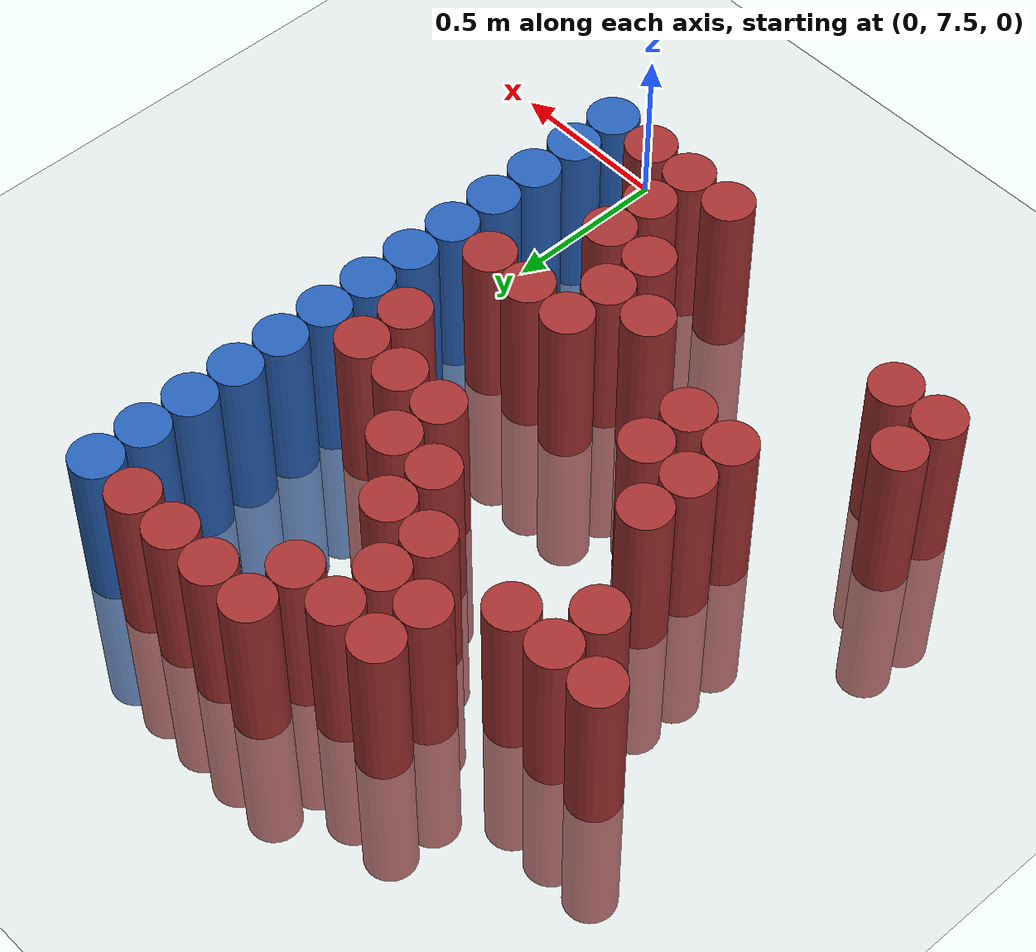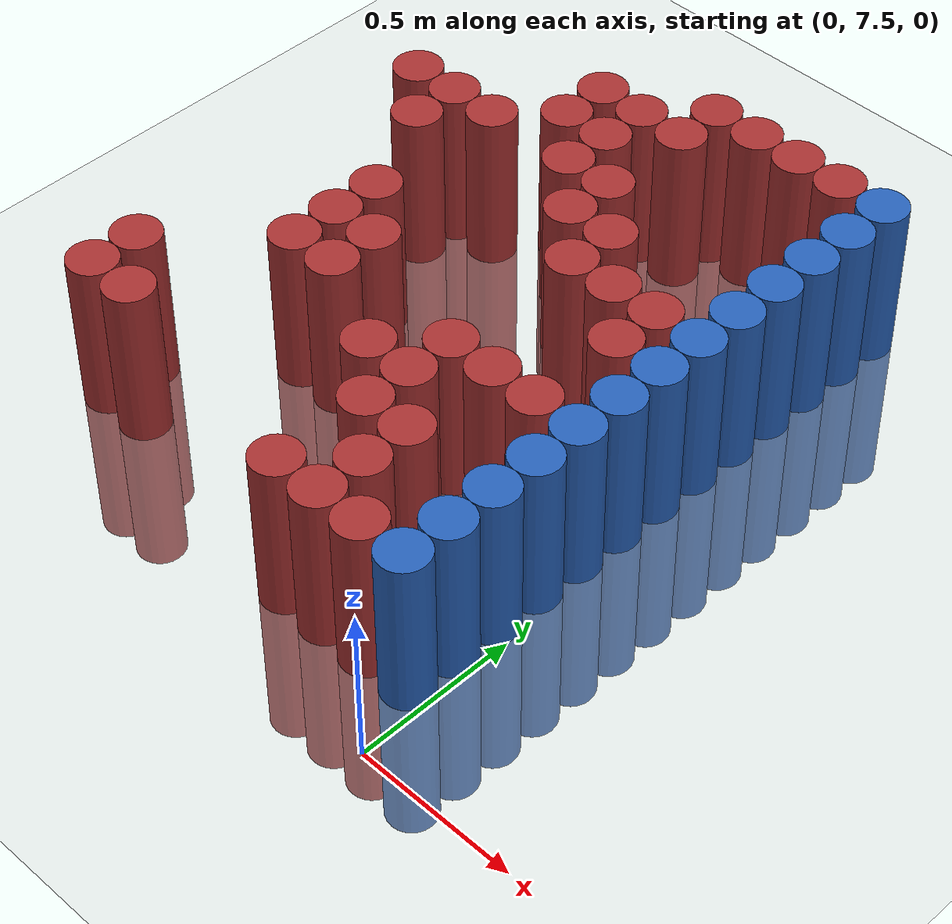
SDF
<sdf version="1.6">
 <world name="default">
  <model name="ground_plane">
   <static>1</static>
   <link name="link">
    <collision name="collision">
     <geometry><plane><normal>0 0 1</normal><size>100 100</size></plane></geometry>
     <surface><friction><ode><mu>100</mu><mu2>50</mu2></ode></friction></surface>
    </collision>
    <visual name="visual">
     <cast_shadows>0</cast_shadows>
     <geometry><plane><normal>0 0 1</normal><size>100 100</size></plane></geometry>
     <material>
      <script><uri>file://media/materials/scripts/gazebo.material</uri><name>Gazebo/Grey</name></script>
     </material>
    </visual>
   </link>
  </model>
  <model name="unit_cylinder_172">
   <static>1</static>
   <pose>-1.425000 7.875000 0.000000 0.000000 0.000000 0.000000</pose>
   <link name="link">
    <inertial>
     <mass>1</mass>
     <inertia><ixx>0.145833</ixx><ixy>0</ixy><ixz>0</ixz><iyy>0.145833</iyy><iyz>0</iyz><izz>0.125</izz></inertia>
    </inertial>
    <collision name="collision">
     <geometry><cylinder><radius>0.075000</radius><length>1</length></cylinder></geometry>
    </collision>
    <visual name="visual">
     <geometry><cylinder><radius>0.075000</radius><length>1</length></cylinder></geometry>
     <material>
      <ambient>0.648000 0.192000 0.192000 1</ambient>
      <diffuse>0.648000 0.192000 0.192000 1</diffuse>
     </material>
     <material>
      <script><name>Gazebo/Grey</name><uri>file://media/materials/scripts/gazebo.material</uri></script>
     </material>
    </visual>
   </link>
  </model>
  <model name="unit_cylinder_173">
   <static>1</static>
   <pose>-1.425000 8.025000 0.000000 0.000000 0.000000 0.000000</pose>
   <link name="link">
    <inertial>
     <mass>1</mass>
     <inertia><ixx>0.145833</ixx><ixy>0</ixy><ixz>0</ixz><iyy>0.145833</iyy><iyz>0</iyz><izz>0.125</izz></inertia>
    </inertial>
    <collision name="collision">
     <geometry><cylinder><radius>0.075000</radius><length>1</length></cylinder></geometry>
    </collision>
    <visual name="visual">
     <geometry><cylinder><radius>0.075000</radius><length>1</length></cylinder></geometry>
     <material>
      <ambient>0.648000 0.192000 0.192000 1</ambient>
      <diffuse>0.648000 0.192000 0.192000 1</diffuse>
     </material>
     <material>
      <script><name>Gazebo/Grey</name><uri>file://media/materials/scripts/gazebo.material</uri></script>
     </material>
    </visual>
   </link>
  </model>
  <model name="unit_cylinder_174">
   <static>1</static>
   <pose>-1.425000 9.075000 0.000000 0.000000 0.000000 0.000000</pose>
   <link name="link">
    <inertial>
     <mass>1</mass>
     <inertia><ixx>0.145833</ixx><ixy>0</ixy><ixz>0</ixz><iyy>0.145833</iyy><iyz>0</iyz><izz>0.125</izz></inertia>
    </inertial>
    <collision name="collision">
     <geometry><cylinder><radius>0.075000</radius><length>1</length></cylinder></geometry>
    </collision>
    <visual name="visual">
     <geometry><cylinder><radius>0.075000</radius><length>1</length></cylinder></geometry>
     <material>
      <ambient>0.648000 0.192000 0.192000 1</ambient>
      <diffuse>0.648000 0.192000 0.192000 1</diffuse>
     </material>
     <material>
      <script><name>Gazebo/Grey</name><uri>file://media/materials/scripts/gazebo.material</uri></script>
     </material>
    </visual>
   </link>
  </model>
  <model name="unit_cylinder_179">
   <static>1</static>
   <pose>-1.275000 7.875000 0.000000 0.000000 0.000000 0.000000</pose>
   <link name="link">
    <inertial>
     <mass>1</mass>
     <inertia><ixx>0.145833</ixx><ixy>0</ixy><ixz>0</ixz><iyy>0.145833</iyy><iyz>0</iyz><izz>0.125</izz></inertia>
    </inertial>
    <collision name="collision">
     <geometry><cylinder><radius>0.075000</radius><length>1</length></cylinder></geometry>
    </collision>
    <visual name="visual">
     <geometry><cylinder><radius>0.075000</radius><length>1</length></cylinder></geometry>
     <material>
      <ambient>0.648000 0.192000 0.192000 1</ambient>
      <diffuse>0.648000 0.192000 0.192000 1</diffuse>
     </material>
     <material>
      <script><name>Gazebo/Grey</name><uri>file://media/materials/scripts/gazebo.material</uri></script>
     </material>
    </visual>
   </link>
  </model>
  <model name="unit_cylinder_180">
   <static>1</static>
   <pose>-1.275000 8.925000 0.000000 0.000000 0.000000 0.000000</pose>
   <link name="link">
    <inertial>
     <mass>1</mass>
     <inertia><ixx>0.145833</ixx><ixy>0</ixy><ixz>0</ixz><iyy>0.145833</iyy><iyz>0</iyz><izz>0.125</izz></inertia>
    </inertial>
    <collision name="collision">
     <geometry><cylinder><radius>0.075000</radius><length>1</length></cylinder></geometry>
    </collision>
    <visual name="visual">
     <geometry><cylinder><radius>0.075000</radius><length>1</length></cylinder></geometry>
     <material>
      <ambient>0.648000 0.192000 0.192000 1</ambient>
      <diffuse>0.648000 0.192000 0.192000 1</diffuse>
     </material>
     <material>
      <script><name>Gazebo/Grey</name><uri>file://media/materials/scripts/gazebo.material</uri></script>
     </material>
    </visual>
   </link>
  </model>
  <model name="unit_cylinder_181">
   <static>1</static>
   <pose>-1.275000 9.075000 0.000000 0.000000 0.000000 0.000000</pose>
   <link name="link">
    <inertial>
     <mass>1</mass>
     <inertia><ixx>0.145833</ixx><ixy>0</ixy><ixz>0</ixz><iyy>0.145833</iyy><iyz>0</iyz><izz>0.125</izz></inertia>
    </inertial>
    <collision name="collision">
     <geometry><cylinder><radius>0.075000</radius><length>1</length></cylinder></geometry>
    </collision>
    <visual name="visual">
     <geometry><cylinder><radius>0.075000</radius><length>1</length></cylinder></geometry>
     <material>
      <ambient>0.648000 0.192000 0.192000 1</ambient>
      <diffuse>0.648000 0.192000 0.192000 1</diffuse>
     </material>
     <material>
      <script><name>Gazebo/Grey</name><uri>file://media/materials/scripts/gazebo.material</uri></script>
     </material>
    </visual>
   </link>
  </model>
  <model name="unit_cylinder_187">
   <static>1</static>
   <pose>-1.125000 8.325000 0.000000 0.000000 0.000000 0.000000</pose>
   <link name="link">
    <inertial>
     <mass>1</mass>
     <inertia><ixx>0.145833</ixx><ixy>0</ixy><ixz>0</ixz><iyy>0.145833</iyy><iyz>0</iyz><izz>0.125</izz></inertia>
    </inertial>
    <collision name="collision">
     <geometry><cylinder><radius>0.075000</radius><length>1</length></cylinder></geometry>
    </collision>
    <visual name="visual">
     <geometry><cylinder><radius>0.075000</radius><length>1</length></cylinder></geometry>
     <material>
      <ambient>0.648000 0.192000 0.192000 1</ambient>
      <diffuse>0.648000 0.192000 0.192000 1</diffuse>
     </material>
     <material>
      <script><name>Gazebo/Grey</name><uri>file://media/materials/scripts/gazebo.material</uri></script>
     </material>
    </visual>
   </link>
  </model>
  <model name="unit_cylinder_188">
   <static>1</static>
   <pose>-1.125000 8.475000 0.000000 0.000000 0.000000 0.000000</pose>
   <link name="link">
    <inertial>
     <mass>1</mass>
     <inertia><ixx>0.145833</ixx><ixy>0</ixy><ixz>0</ixz><iyy>0.145833</iyy><iyz>0</iyz><izz>0.125</izz></inertia>
    </inertial>
    <collision name="collision">
     <geometry><cylinder><radius>0.075000</radius><length>1</length></cylinder></geometry>
    </collision>
    <visual name="visual">
     <geometry><cylinder><radius>0.075000</radius><length>1</length></cylinder></geometry>
     <material>
      <ambient>0.648000 0.192000 0.192000 1</ambient>
      <diffuse>0.648000 0.192000 0.192000 1</diffuse>
     </material>
     <material>
      <script><name>Gazebo/Grey</name><uri>file://media/materials/scripts/gazebo.material</uri></script>
     </material>
    </visual>
   </link>
  </model>
  <model name="unit_cylinder_189">
   <static>1</static>
   <pose>-1.125000 8.625000 0.000000 0.000000 0.000000 0.000000</pose>
   <link name="link">
    <inertial>
     <mass>1</mass>
     <inertia><ixx>0.145833</ixx><ixy>0</ixy><ixz>0</ixz><iyy>0.145833</iyy><iyz>0</iyz><izz>0.125</izz></inertia>
    </inertial>
    <collision name="collision">
     <geometry><cylinder><radius>0.075000</radius><length>1</length></cylinder></geometry>
    </collision>
    <visual name="visual">
     <geometry><cylinder><radius>0.075000</radius><length>1</length></cylinder></geometry>
     <material>
      <ambient>0.648000 0.192000 0.192000 1</ambient>
      <diffuse>0.648000 0.192000 0.192000 1</diffuse>
     </material>
     <material>
      <script><name>Gazebo/Grey</name><uri>file://media/materials/scripts/gazebo.material</uri></script>
     </material>
    </visual>
   </link>
  </model>
  <model name="unit_cylinder_190">
   <static>1</static>
   <pose>-1.125000 9.075000 0.000000 0.000000 0.000000 0.000000</pose>
   <link name="link">
    <inertial>
     <mass>1</mass>
     <inertia><ixx>0.145833</ixx><ixy>0</ixy><ixz>0</ixz><iyy>0.145833</iyy><iyz>0</iyz><izz>0.125</izz></inertia>
    </inertial>
    <collision name="collision">
     <geometry><cylinder><radius>0.075000</radius><length>1</length></cylinder></geometry>
    </collision>
    <visual name="visual">
     <geometry><cylinder><radius>0.075000</radius><length>1</length></cylinder></geometry>
     <material>
      <ambient>0.648000 0.192000 0.192000 1</ambient>
      <diffuse>0.648000 0.192000 0.192000 1</diffuse>
     </material>
     <material>
      <script><name>Gazebo/Grey</name><uri>file://media/materials/scripts/gazebo.material</uri></script>
     </material>
    </visual>
   </link>
  </model>
  <model name="unit_cylinder_193">
   <static>1</static>
   <pose>-0.975000 8.325000 0.000000 0.000000 0.000000 0.000000</pose>
   <link name="link">
    <inertial>
     <mass>1</mass>
     <inertia><ixx>0.145833</ixx><ixy>0</ixy><ixz>0</ixz><iyy>0.145833</iyy><iyz>0</iyz><izz>0.125</izz></inertia>
    </inertial>
    <collision name="collision">
     <geometry><cylinder><radius>0.075000</radius><length>1</length></cylinder></geometry>
    </collision>
    <visual name="visual">
     <geometry><cylinder><radius>0.075000</radius><length>1</length></cylinder></geometry>
     <material>
      <ambient>0.648000 0.192000 0.192000 1</ambient>
      <diffuse>0.648000 0.192000 0.192000 1</diffuse>
     </material>
     <material>
      <script><name>Gazebo/Grey</name><uri>file://media/materials/scripts/gazebo.material</uri></script>
     </material>
    </visual>
   </link>
  </model>
  <model name="unit_cylinder_194">
   <static>1</static>
   <pose>-0.975000 8.475000 0.000000 0.000000 0.000000 0.000000</pose>
   <link name="link">
    <inertial>
     <mass>1</mass>
     <inertia><ixx>0.145833</ixx><ixy>0</ixy><ixz>0</ixz><iyy>0.145833</iyy><iyz>0</iyz><izz>0.125</izz></inertia>
    </inertial>
    <collision name="collision">
     <geometry><cylinder><radius>0.075000</radius><length>1</length></cylinder></geometry>
    </collision>
    <visual name="visual">
     <geometry><cylinder><radius>0.075000</radius><length>1</length></cylinder></geometry>
     <material>
      <ambient>0.648000 0.192000 0.192000 1</ambient>
      <diffuse>0.648000 0.192000 0.192000 1</diffuse>
     </material>
     <material>
      <script><name>Gazebo/Grey</name><uri>file://media/materials/scripts/gazebo.material</uri></script>
     </material>
    </visual>
   </link>
  </model>
  <model name="unit_cylinder_195">
   <static>1</static>
   <pose>-0.975000 9.225000 0.000000 0.000000 0.000000 0.000000</pose>
   <link name="link">
    <inertial>
     <mass>1</mass>
     <inertia><ixx>0.145833</ixx><ixy>0</ixy><ixz>0</ixz><iyy>0.145833</iyy><iyz>0</iyz><izz>0.125</izz></inertia>
    </inertial>
    <collision name="collision">
     <geometry><cylinder><radius>0.075000</radius><length>1</length></cylinder></geometry>
    </collision>
    <visual name="visual">
     <geometry><cylinder><radius>0.075000</radius><length>1</length></cylinder></geometry>
     <material>
      <ambient>0.648000 0.192000 0.192000 1</ambient>
      <diffuse>0.648000 0.192000 0.192000 1</diffuse>
     </material>
     <material>
      <script><name>Gazebo/Grey</name><uri>file://media/materials/scripts/gazebo.material</uri></script>
     </material>
    </visual>
   </link>
  </model>
  <model name="unit_cylinder_196">
   <static>1</static>
   <pose>-0.975000 9.375000 0.000000 0.000000 0.000000 0.000000</pose>
   <link name="link">
    <inertial>
     <mass>1</mass>
     <inertia><ixx>0.145833</ixx><ixy>0</ixy><ixz>0</ixz><iyy>0.145833</iyy><iyz>0</iyz><izz>0.125</izz></inertia>
    </inertial>
    <collision name="collision">
     <geometry><cylinder><radius>0.075000</radius><length>1</length></cylinder></geometry>
    </collision>
    <visual name="visual">
     <geometry><cylinder><radius>0.075000</radius><length>1</length></cylinder></geometry>
     <material>
      <ambient>0.648000 0.192000 0.192000 1</ambient>
      <diffuse>0.648000 0.192000 0.192000 1</diffuse>
     </material>
     <material>
      <script><name>Gazebo/Grey</name><uri>file://media/materials/scripts/gazebo.material</uri></script>
     </material>
    </visual>
   </link>
  </model>
  <model name="unit_cylinder_200">
   <static>1</static>
   <pose>-0.825000 9.075000 0.000000 0.000000 0.000000 0.000000</pose>
   <link name="link">
    <inertial>
     <mass>1</mass>
     <inertia><ixx>0.145833</ixx><ixy>0</ixy><ixz>0</ixz><iyy>0.145833</iyy><iyz>0</iyz><izz>0.125</izz></inertia>
    </inertial>
    <collision name="collision">
     <geometry><cylinder><radius>0.075000</radius><length>1</length></cylinder></geometry>
    </collision>
    <visual name="visual">
     <geometry><cylinder><radius>0.075000</radius><length>1</length></cylinder></geometry>
     <material>
      <ambient>0.648000 0.192000 0.192000 1</ambient>
      <diffuse>0.648000 0.192000 0.192000 1</diffuse>
     </material>
     <material>
      <script><name>Gazebo/Grey</name><uri>file://media/materials/scripts/gazebo.material</uri></script>
     </material>
    </visual>
   </link>
  </model>
  <model name="unit_cylinder_201">
   <static>1</static>
   <pose>-0.825000 9.225000 0.000000 0.000000 0.000000 0.000000</pose>
   <link name="link">
    <inertial>
     <mass>1</mass>
     <inertia><ixx>0.145833</ixx><ixy>0</ixy><ixz>0</ixz><iyy>0.145833</iyy><iyz>0</iyz><izz>0.125</izz></inertia>
    </inertial>
    <collision name="collision">
     <geometry><cylinder><radius>0.075000</radius><length>1</length></cylinder></geometry>
    </collision>
    <visual name="visual">
     <geometry><cylinder><radius>0.075000</radius><length>1</length></cylinder></geometry>
     <material>
      <ambient>0.648000 0.192000 0.192000 1</ambient>
      <diffuse>0.648000 0.192000 0.192000 1</diffuse>
     </material>
     <material>
      <script><name>Gazebo/Grey</name><uri>file://media/materials/scripts/gazebo.material</uri></script>
     </material>
    </visual>
   </link>
  </model>
  <model name="unit_cylinder_202">
   <static>1</static>
   <pose>-0.825000 9.375000 0.000000 0.000000 0.000000 0.000000</pose>
   <link name="link">
    <inertial>
     <mass>1</mass>
     <inertia><ixx>0.145833</ixx><ixy>0</ixy><ixz>0</ixz><iyy>0.145833</iyy><iyz>0</iyz><izz>0.125</izz></inertia>
    </inertial>
    <collision name="collision">
     <geometry><cylinder><radius>0.075000</radius><length>1</length></cylinder></geometry>
    </collision>
    <visual name="visual">
     <geometry><cylinder><radius>0.075000</radius><length>1</length></cylinder></geometry>
     <material>
      <ambient>0.648000 0.192000 0.192000 1</ambient>
      <diffuse>0.648000 0.192000 0.192000 1</diffuse>
     </material>
     <material>
      <script><name>Gazebo/Grey</name><uri>file://media/materials/scripts/gazebo.material</uri></script>
     </material>
    </visual>
   </link>
  </model>
  <model name="unit_cylinder_203">
   <static>1</static>
   <pose>-0.675000 8.175000 0.000000 0.000000 0.000000 0.000000</pose>
   <link name="link">
    <inertial>
     <mass>1</mass>
     <inertia><ixx>0.145833</ixx><ixy>0</ixy><ixz>0</ixz><iyy>0.145833</iyy><iyz>0</iyz><izz>0.125</izz></inertia>
    </inertial>
    <collision name="collision">
     <geometry><cylinder><radius>0.075000</radius><length>1</length></cylinder></geometry>
    </collision>
    <visual name="visual">
     <geometry><cylinder><radius>0.075000</radius><length>1</length></cylinder></geometry>
     <material>
      <ambient>0.648000 0.192000 0.192000 1</ambient>
      <diffuse>0.648000 0.192000 0.192000 1</diffuse>
     </material>
     <material>
      <script><name>Gazebo/Grey</name><uri>file://media/materials/scripts/gazebo.material</uri></script>
     </material>
    </visual>
   </link>
  </model>
  <model name="unit_cylinder_204">
   <static>1</static>
   <pose>-0.675000 8.925000 0.000000 0.000000 0.000000 0.000000</pose>
   <link name="link">
    <inertial>
     <mass>1</mass>
     <inertia><ixx>0.145833</ixx><ixy>0</ixy><ixz>0</ixz><iyy>0.145833</iyy><iyz>0</iyz><izz>0.125</izz></inertia>
    </inertial>
    <collision name="collision">
     <geometry><cylinder><radius>0.075000</radius><length>1</length></cylinder></geometry>
    </collision>
    <visual name="visual">
     <geometry><cylinder><radius>0.075000</radius><length>1</length></cylinder></geometry>
     <material>
      <ambient>0.648000 0.192000 0.192000 1</ambient>
      <diffuse>0.648000 0.192000 0.192000 1</diffuse>
     </material>
     <material>
      <script><name>Gazebo/Grey</name><uri>file://media/materials/scripts/gazebo.material</uri></script>
     </material>
    </visual>
   </link>
  </model>
  <model name="unit_cylinder_205">
   <static>1</static>
   <pose>-0.675000 9.075000 0.000000 0.000000 0.000000 0.000000</pose>
   <link name="link">
    <inertial>
     <mass>1</mass>
     <inertia><ixx>0.145833</ixx><ixy>0</ixy><ixz>0</ixz><iyy>0.145833</iyy><iyz>0</iyz><izz>0.125</izz></inertia>
    </inertial>
    <collision name="collision">
     <geometry><cylinder><radius>0.075000</radius><length>1</length></cylinder></geometry>
    </collision>
    <visual name="visual">
     <geometry><cylinder><radius>0.075000</radius><length>1</length></cylinder></geometry>
     <material>
      <ambient>0.648000 0.192000 0.192000 1</ambient>
      <diffuse>0.648000 0.192000 0.192000 1</diffuse>
     </material>
     <material>
      <script><name>Gazebo/Grey</name><uri>file://media/materials/scripts/gazebo.material</uri></script>
     </material>
    </visual>
   </link>
  </model>
  <model name="unit_cylinder_206">
   <static>1</static>
   <pose>-0.675000 9.375000 0.000000 0.000000 0.000000 0.000000</pose>
   <link name="link">
    <inertial>
     <mass>1</mass>
     <inertia><ixx>0.145833</ixx><ixy>0</ixy><ixz>0</ixz><iyy>0.145833</iyy><iyz>0</iyz><izz>0.125</izz></inertia>
    </inertial>
    <collision name="collision">
     <geometry><cylinder><radius>0.075000</radius><length>1</length></cylinder></geometry>
    </collision>
    <visual name="visual">
     <geometry><cylinder><radius>0.075000</radius><length>1</length></cylinder></geometry>
     <material>
      <ambient>0.648000 0.192000 0.192000 1</ambient>
      <diffuse>0.648000 0.192000 0.192000 1</diffuse>
     </material>
     <material>
      <script><name>Gazebo/Grey</name><uri>file://media/materials/scripts/gazebo.material</uri></script>
     </material>
    </visual>
   </link>
  </model>
  <model name="unit_cylinder_207">
   <static>1</static>
   <pose>-0.675000 9.525000 0.000000 0.000000 0.000000 0.000000</pose>
   <link name="link">
    <inertial>
     <mass>1</mass>
     <inertia><ixx>0.145833</ixx><ixy>0</ixy><ixz>0</ixz><iyy>0.145833</iyy><iyz>0</iyz><izz>0.125</izz></inertia>
    </inertial>
    <collision name="collision">
     <geometry><cylinder><radius>0.075000</radius><length>1</length></cylinder></geometry>
    </collision>
    <visual name="visual">
     <geometry><cylinder><radius>0.075000</radius><length>1</length></cylinder></geometry>
     <material>
      <ambient>0.648000 0.192000 0.192000 1</ambient>
      <diffuse>0.648000 0.192000 0.192000 1</diffuse>
     </material>
     <material>
      <script><name>Gazebo/Grey</name><uri>file://media/materials/scripts/gazebo.material</uri></script>
     </material>
    </visual>
   </link>
  </model>
  <model name="unit_cylinder_208">
   <static>1</static>
   <pose>-0.525000 7.725000 0.000000 0.000000 0.000000 0.000000</pose>
   <link name="link">
    <inertial>
     <mass>1</mass>
     <inertia><ixx>0.145833</ixx><ixy>0</ixy><ixz>0</ixz><iyy>0.145833</iyy><iyz>0</iyz><izz>0.125</izz></inertia>
    </inertial>
    <collision name="collision">
     <geometry><cylinder><radius>0.075000</radius><length>1</length></cylinder></geometry>
    </collision>
    <visual name="visual">
     <geometry><cylinder><radius>0.075000</radius><length>1</length></cylinder></geometry>
     <material>
      <ambient>0.648000 0.192000 0.192000 1</ambient>
      <diffuse>0.648000 0.192000 0.192000 1</diffuse>
     </material>
     <material>
      <script><name>Gazebo/Grey</name><uri>file://media/materials/scripts/gazebo.material</uri></script>
     </material>
    </visual>
   </link>
  </model>
  <model name="unit_cylinder_209">
   <static>1</static>
   <pose>-0.525000 8.025000 0.000000 0.000000 0.000000 0.000000</pose>
   <link name="link">
    <inertial>
     <mass>1</mass>
     <inertia><ixx>0.145833</ixx><ixy>0</ixy><ixz>0</ixz><iyy>0.145833</iyy><iyz>0</iyz><izz>0.125</izz></inertia>
    </inertial>
    <collision name="collision">
     <geometry><cylinder><radius>0.075000</radius><length>1</length></cylinder></geometry>
    </collision>
    <visual name="visual">
     <geometry><cylinder><radius>0.075000</radius><length>1</length></cylinder></geometry>
     <material>
      <ambient>0.648000 0.192000 0.192000 1</ambient>
      <diffuse>0.648000 0.192000 0.192000 1</diffuse>
     </material>
     <material>
      <script><name>Gazebo/Grey</name><uri>file://media/materials/scripts/gazebo.material</uri></script>
     </material>
    </visual>
   </link>
  </model>
  <model name="unit_cylinder_210">
   <static>1</static>
   <pose>-0.525000 8.175000 0.000000 0.000000 0.000000 0.000000</pose>
   <link name="link">
    <inertial>
     <mass>1</mass>
     <inertia><ixx>0.145833</ixx><ixy>0</ixy><ixz>0</ixz><iyy>0.145833</iyy><iyz>0</iyz><izz>0.125</izz></inertia>
    </inertial>
    <collision name="collision">
     <geometry><cylinder><radius>0.075000</radius><length>1</length></cylinder></geometry>
    </collision>
    <visual name="visual">
     <geometry><cylinder><radius>0.075000</radius><length>1</length></cylinder></geometry>
     <material>
      <ambient>0.648000 0.192000 0.192000 1</ambient>
      <diffuse>0.648000 0.192000 0.192000 1</diffuse>
     </material>
     <material>
      <script><name>Gazebo/Grey</name><uri>file://media/materials/scripts/gazebo.material</uri></script>
     </material>
    </visual>
   </link>
  </model>
  <model name="unit_cylinder_211">
   <static>1</static>
   <pose>-0.525000 8.325000 0.000000 0.000000 0.000000 0.000000</pose>
   <link name="link">
    <inertial>
     <mass>1</mass>
     <inertia><ixx>0.145833</ixx><ixy>0</ixy><ixz>0</ixz><iyy>0.145833</iyy><iyz>0</iyz><izz>0.125</izz></inertia>
    </inertial>
    <collision name="collision">
     <geometry><cylinder><radius>0.075000</radius><length>1</length></cylinder></geometry>
    </collision>
    <visual name="visual">
     <geometry><cylinder><radius>0.075000</radius><length>1</length></cylinder></geometry>
     <material>
      <ambient>0.648000 0.192000 0.192000 1</ambient>
      <diffuse>0.648000 0.192000 0.192000 1</diffuse>
     </material>
     <material>
      <script><name>Gazebo/Grey</name><uri>file://media/materials/scripts/gazebo.material</uri></script>
     </material>
    </visual>
   </link>
  </model>
  <model name="unit_cylinder_212">
   <static>1</static>
   <pose>-0.525000 8.775000 0.000000 0.000000 0.000000 0.000000</pose>
   <link name="link">
    <inertial>
     <mass>1</mass>
     <inertia><ixx>0.145833</ixx><ixy>0</ixy><ixz>0</ixz><iyy>0.145833</iyy><iyz>0</iyz><izz>0.125</izz></inertia>
    </inertial>
    <collision name="collision">
     <geometry><cylinder><radius>0.075000</radius><length>1</length></cylinder></geometry>
    </collision>
    <visual name="visual">
     <geometry><cylinder><radius>0.075000</radius><length>1</length></cylinder></geometry>
     <material>
      <ambient>0.648000 0.192000 0.192000 1</ambient>
      <diffuse>0.648000 0.192000 0.192000 1</diffuse>
     </material>
     <material>
      <script><name>Gazebo/Grey</name><uri>file://media/materials/scripts/gazebo.material</uri></script>
     </material>
    </visual>
   </link>
  </model>
  <model name="unit_cylinder_213">
   <static>1</static>
   <pose>-0.525000 8.925000 0.000000 0.000000 0.000000 0.000000</pose>
   <link name="link">
    <inertial>
     <mass>1</mass>
     <inertia><ixx>0.145833</ixx><ixy>0</ixy><ixz>0</ixz><iyy>0.145833</iyy><iyz>0</iyz><izz>0.125</izz></inertia>
    </inertial>
    <collision name="collision">
     <geometry><cylinder><radius>0.075000</radius><length>1</length></cylinder></geometry>
    </collision>
    <visual name="visual">
     <geometry><cylinder><radius>0.075000</radius><length>1</length></cylinder></geometry>
     <material>
      <ambient>0.648000 0.192000 0.192000 1</ambient>
      <diffuse>0.648000 0.192000 0.192000 1</diffuse>
     </material>
     <material>
      <script><name>Gazebo/Grey</name><uri>file://media/materials/scripts/gazebo.material</uri></script>
     </material>
    </visual>
   </link>
  </model>
  <model name="unit_cylinder_214">
   <static>1</static>
   <pose>-0.525000 9.525000 0.000000 0.000000 0.000000 0.000000</pose>
   <link name="link">
    <inertial>
     <mass>1</mass>
     <inertia><ixx>0.145833</ixx><ixy>0</ixy><ixz>0</ixz><iyy>0.145833</iyy><iyz>0</iyz><izz>0.125</izz></inertia>
    </inertial>
    <collision name="collision">
     <geometry><cylinder><radius>0.075000</radius><length>1</length></cylinder></geometry>
    </collision>
    <visual name="visual">
     <geometry><cylinder><radius>0.075000</radius><length>1</length></cylinder></geometry>
     <material>
      <ambient>0.648000 0.192000 0.192000 1</ambient>
      <diffuse>0.648000 0.192000 0.192000 1</diffuse>
     </material>
     <material>
      <script><name>Gazebo/Grey</name><uri>file://media/materials/scripts/gazebo.material</uri></script>
     </material>
    </visual>
   </link>
  </model>
  <model name="unit_cylinder_215">
   <static>1</static>
   <pose>-0.375000 7.725000 0.000000 0.000000 0.000000 0.000000</pose>
   <link name="link">
    <inertial>
     <mass>1</mass>
     <inertia><ixx>0.145833</ixx><ixy>0</ixy><ixz>0</ixz><iyy>0.145833</iyy><iyz>0</iyz><izz>0.125</izz></inertia>
    </inertial>
    <collision name="collision">
     <geometry><cylinder><radius>0.075000</radius><length>1</length></cylinder></geometry>
    </collision>
    <visual name="visual">
     <geometry><cylinder><radius>0.075000</radius><length>1</length></cylinder></geometry>
     <material>
      <ambient>0.648000 0.192000 0.192000 1</ambient>
      <diffuse>0.648000 0.192000 0.192000 1</diffuse>
     </material>
     <material>
      <script><name>Gazebo/Grey</name><uri>file://media/materials/scripts/gazebo.material</uri></script>
     </material>
    </visual>
   </link>
  </model>
  <model name="unit_cylinder_216">
   <static>1</static>
   <pose>-0.375000 7.875000 0.000000 0.000000 0.000000 0.000000</pose>
   <link name="link">
    <inertial>
     <mass>1</mass>
     <inertia><ixx>0.145833</ixx><ixy>0</ixy><ixz>0</ixz><iyy>0.145833</iyy><iyz>0</iyz><izz>0.125</izz></inertia>
    </inertial>
    <collision name="collision">
     <geometry><cylinder><radius>0.075000</radius><length>1</length></cylinder></geometry>
    </collision>
    <visual name="visual">
     <geometry><cylinder><radius>0.075000</radius><length>1</length></cylinder></geometry>
     <material>
      <ambient>0.648000 0.192000 0.192000 1</ambient>
      <diffuse>0.648000 0.192000 0.192000 1</diffuse>
     </material>
     <material>
      <script><name>Gazebo/Grey</name><uri>file://media/materials/scripts/gazebo.material</uri></script>
     </material>
    </visual>
   </link>
  </model>
  <model name="unit_cylinder_217">
   <static>1</static>
   <pose>-0.375000 8.025000 0.000000 0.000000 0.000000 0.000000</pose>
   <link name="link">
    <inertial>
     <mass>1</mass>
     <inertia><ixx>0.145833</ixx><ixy>0</ixy><ixz>0</ixz><iyy>0.145833</iyy><iyz>0</iyz><izz>0.125</izz></inertia>
    </inertial>
    <collision name="collision">
     <geometry><cylinder><radius>0.075000</radius><length>1</length></cylinder></geometry>
    </collision>
    <visual name="visual">
     <geometry><cylinder><radius>0.075000</radius><length>1</length></cylinder></geometry>
     <material>
      <ambient>0.648000 0.192000 0.192000 1</ambient>
      <diffuse>0.648000 0.192000 0.192000 1</diffuse>
     </material>
     <material>
      <script><name>Gazebo/Grey</name><uri>file://media/materials/scripts/gazebo.material</uri></script>
     </material>
    </visual>
   </link>
  </model>
  <model name="unit_cylinder_218">
   <static>1</static>
   <pose>-0.375000 8.325000 0.000000 0.000000 0.000000 0.000000</pose>
   <link name="link">
    <inertial>
     <mass>1</mass>
     <inertia><ixx>0.145833</ixx><ixy>0</ixy><ixz>0</ixz><iyy>0.145833</iyy><iyz>0</iyz><izz>0.125</izz></inertia>
    </inertial>
    <collision name="collision">
     <geometry><cylinder><radius>0.075000</radius><length>1</length></cylinder></geometry>
    </collision>
    <visual name="visual">
     <geometry><cylinder><radius>0.075000</radius><length>1</length></cylinder></geometry>
     <material>
      <ambient>0.648000 0.192000 0.192000 1</ambient>
      <diffuse>0.648000 0.192000 0.192000 1</diffuse>
     </material>
     <material>
      <script><name>Gazebo/Grey</name><uri>file://media/materials/scripts/gazebo.material</uri></script>
     </material>
    </visual>
   </link>
  </model>
  <model name="unit_cylinder_219">
   <static>1</static>
   <pose>-0.375000 8.775000 0.000000 0.000000 0.000000 0.000000</pose>
   <link name="link">
    <inertial>
     <mass>1</mass>
     <inertia><ixx>0.145833</ixx><ixy>0</ixy><ixz>0</ixz><iyy>0.145833</iyy><iyz>0</iyz><izz>0.125</izz></inertia>
    </inertial>
    <collision name="collision">
     <geometry><cylinder><radius>0.075000</radius><length>1</length></cylinder></geometry>
    </collision>
    <visual name="visual">
     <geometry><cylinder><radius>0.075000</radius><length>1</length></cylinder></geometry>
     <material>
      <ambient>0.648000 0.192000 0.192000 1</ambient>
      <diffuse>0.648000 0.192000 0.192000 1</diffuse>
     </material>
     <material>
      <script><name>Gazebo/Grey</name><uri>file://media/materials/scripts/gazebo.material</uri></script>
     </material>
    </visual>
   </link>
  </model>
  <model name="unit_cylinder_220">
   <static>1</static>
   <pose>-0.375000 9.525000 0.000000 0.000000 0.000000 0.000000</pose>
   <link name="link">
    <inertial>
     <mass>1</mass>
     <inertia><ixx>0.145833</ixx><ixy>0</ixy><ixz>0</ixz><iyy>0.145833</iyy><iyz>0</iyz><izz>0.125</izz></inertia>
    </inertial>
    <collision name="collision">
     <geometry><cylinder><radius>0.075000</radius><length>1</length></cylinder></geometry>
    </collision>
    <visual name="visual">
     <geometry><cylinder><radius>0.075000</radius><length>1</length></cylinder></geometry>
     <material>
      <ambient>0.648000 0.192000 0.192000 1</ambient>
      <diffuse>0.648000 0.192000 0.192000 1</diffuse>
     </material>
     <material>
      <script><name>Gazebo/Grey</name><uri>file://media/materials/scripts/gazebo.material</uri></script>
     </material>
    </visual>
   </link>
  </model>
  <model name="unit_cylinder_230">
   <static>1</static>
   <pose>-0.225000 7.725000 0.000000 0.000000 0.000000 0.000000</pose>
   <link name="link">
    <inertial>
     <mass>1</mass>
     <inertia><ixx>0.145833</ixx><ixy>0</ixy><ixz>0</ixz><iyy>0.145833</iyy><iyz>0</iyz><izz>0.125</izz></inertia>
    </inertial>
    <collision name="collision">
     <geometry><cylinder><radius>0.075000</radius><length>1</length></cylinder></geometry>
    </collision>
    <visual name="visual">
     <geometry><cylinder><radius>0.075000</radius><length>1</length></cylinder></geometry>
     <material>
      <ambient>0.648000 0.192000 0.192000 1</ambient>
      <diffuse>0.648000 0.192000 0.192000 1</diffuse>
     </material>
     <material>
      <script><name>Gazebo/Grey</name><uri>file://media/materials/scripts/gazebo.material</uri></script>
     </material>
    </visual>
   </link>
  </model>
  <model name="unit_cylinder_231">
   <static>1</static>
   <pose>-0.225000 8.325000 0.000000 0.000000 0.000000 0.000000</pose>
   <link name="link">
    <inertial>
     <mass>1</mass>
     <inertia><ixx>0.145833</ixx><ixy>0</ixy><ixz>0</ixz><iyy>0.145833</iyy><iyz>0</iyz><izz>0.125</izz></inertia>
    </inertial>
    <collision name="collision">
     <geometry><cylinder><radius>0.075000</radius><length>1</length></cylinder></geometry>
    </collision>
    <visual name="visual">
     <geometry><cylinder><radius>0.075000</radius><length>1</length></cylinder></geometry>
     <material>
      <ambient>0.648000 0.192000 0.192000 1</ambient>
      <diffuse>0.648000 0.192000 0.192000 1</diffuse>
     </material>
     <material>
      <script><name>Gazebo/Grey</name><uri>file://media/materials/scripts/gazebo.material</uri></script>
     </material>
    </visual>
   </link>
  </model>
  <model name="unit_cylinder_232">
   <static>1</static>
   <pose>-0.225000 8.625000 0.000000 0.000000 0.000000 0.000000</pose>
   <link name="link">
    <inertial>
     <mass>1</mass>
     <inertia><ixx>0.145833</ixx><ixy>0</ixy><ixz>0</ixz><iyy>0.145833</iyy><iyz>0</iyz><izz>0.125</izz></inertia>
    </inertial>
    <collision name="collision">
     <geometry><cylinder><radius>0.075000</radius><length>1</length></cylinder></geometry>
    </collision>
    <visual name="visual">
     <geometry><cylinder><radius>0.075000</radius><length>1</length></cylinder></geometry>
     <material>
      <ambient>0.648000 0.192000 0.192000 1</ambient>
      <diffuse>0.648000 0.192000 0.192000 1</diffuse>
     </material>
     <material>
      <script><name>Gazebo/Grey</name><uri>file://media/materials/scripts/gazebo.material</uri></script>
     </material>
    </visual>
   </link>
  </model>
  <model name="unit_cylinder_233">
   <static>1</static>
   <pose>-0.225000 8.775000 0.000000 0.000000 0.000000 0.000000</pose>
   <link name="link">
    <inertial>
     <mass>1</mass>
     <inertia><ixx>0.145833</ixx><ixy>0</ixy><ixz>0</ixz><iyy>0.145833</iyy><iyz>0</iyz><izz>0.125</izz></inertia>
    </inertial>
    <collision name="collision">
     <geometry><cylinder><radius>0.075000</radius><length>1</length></cylinder></geometry>
    </collision>
    <visual name="visual">
     <geometry><cylinder><radius>0.075000</radius><length>1</length></cylinder></geometry>
     <material>
      <ambient>0.648000 0.192000 0.192000 1</ambient>
      <diffuse>0.648000 0.192000 0.192000 1</diffuse>
     </material>
     <material>
      <script><name>Gazebo/Grey</name><uri>file://media/materials/scripts/gazebo.material</uri></script>
     </material>
    </visual>
   </link>
  </model>
  <model name="unit_cylinder_234">
   <static>1</static>
   <pose>-0.225000 9.525000 0.000000 0.000000 0.000000 0.000000</pose>
   <link name="link">
    <inertial>
     <mass>1</mass>
     <inertia><ixx>0.145833</ixx><ixy>0</ixy><ixz>0</ixz><iyy>0.145833</iyy><iyz>0</iyz><izz>0.125</izz></inertia>
    </inertial>
    <collision name="collision">
     <geometry><cylinder><radius>0.075000</radius><length>1</length></cylinder></geometry>
    </collision>
    <visual name="visual">
     <geometry><cylinder><radius>0.075000</radius><length>1</length></cylinder></geometry>
     <material>
      <ambient>0.648000 0.192000 0.192000 1</ambient>
      <diffuse>0.648000 0.192000 0.192000 1</diffuse>
     </material>
     <material>
      <script><name>Gazebo/Grey</name><uri>file://media/materials/scripts/gazebo.material</uri></script>
     </material>
    </visual>
   </link>
  </model>
  <model name="unit_cylinder_252">
   <static>1</static>
   <pose>-0.075000 7.725000 0.000000 0.000000 0.000000 0.000000</pose>
   <link name="link">
    <inertial>
     <mass>1</mass>
     <inertia><ixx>0.145833</ixx><ixy>0</ixy><ixz>0</ixz><iyy>0.145833</iyy><iyz>0</iyz><izz>0.125</izz></inertia>
    </inertial>
    <collision name="collision">
     <geometry><cylinder><radius>0.075000</radius><length>1</length></cylinder></geometry>
    </collision>
    <visual name="visual">
     <geometry><cylinder><radius>0.075000</radius><length>1</length></cylinder></geometry>
     <material>
      <ambient>0.152000 0.379000 0.720000 1</ambient>
      <diffuse>0.152000 0.379000 0.720000 1</diffuse>
     </material>
     <material>
      <script><name>Gazebo/Grey</name><uri>file://media/materials/scripts/gazebo.material</uri></script>
     </material>
    </visual>
   </link>
  </model>
  <model name="unit_cylinder_253">
   <static>1</static>
   <pose>-0.075000 7.875000 0.000000 0.000000 0.000000 0.000000</pose>
   <link name="link">
    <inertial>
     <mass>1</mass>
     <inertia><ixx>0.145833</ixx><ixy>0</ixy><ixz>0</ixz><iyy>0.145833</iyy><iyz>0</iyz><izz>0.125</izz></inertia>
    </inertial>
    <collision name="collision">
     <geometry><cylinder><radius>0.075000</radius><length>1</length></cylinder></geometry>
    </collision>
    <visual name="visual">
     <geometry><cylinder><radius>0.075000</radius><length>1</length></cylinder></geometry>
     <material>
      <ambient>0.152000 0.379000 0.720000 1</ambient>
      <diffuse>0.152000 0.379000 0.720000 1</diffuse>
     </material>
     <material>
      <script><name>Gazebo/Grey</name><uri>file://media/materials/scripts/gazebo.material</uri></script>
     </material>
    </visual>
   </link>
  </model>
  <model name="unit_cylinder_254">
   <static>1</static>
   <pose>-0.075000 8.025000 0.000000 0.000000 0.000000 0.000000</pose>
   <link name="link">
    <inertial>
     <mass>1</mass>
     <inertia><ixx>0.145833</ixx><ixy>0</ixy><ixz>0</ixz><iyy>0.145833</iyy><iyz>0</iyz><izz>0.125</izz></inertia>
    </inertial>
    <collision name="collision">
     <geometry><cylinder><radius>0.075000</radius><length>1</length></cylinder></geometry>
    </collision>
    <visual name="visual">
     <geometry><cylinder><radius>0.075000</radius><length>1</length></cylinder></geometry>
     <material>
      <ambient>0.152000 0.379000 0.720000 1</ambient>
      <diffuse>0.152000 0.379000 0.720000 1</diffuse>
     </material>
     <material>
      <script><name>Gazebo/Grey</name><uri>file://media/materials/scripts/gazebo.material</uri></script>
     </material>
    </visual>
   </link>
  </model>
  <model name="unit_cylinder_255">
   <static>1</static>
   <pose>-0.075000 8.175000 0.000000 0.000000 0.000000 0.000000</pose>
   <link name="link">
    <inertial>
     <mass>1</mass>
     <inertia><ixx>0.145833</ixx><ixy>0</ixy><ixz>0</ixz><iyy>0.145833</iyy><iyz>0</iyz><izz>0.125</izz></inertia>
    </inertial>
    <collision name="collision">
     <geometry><cylinder><radius>0.075000</radius><length>1</length></cylinder></geometry>
    </collision>
    <visual name="visual">
     <geometry><cylinder><radius>0.075000</radius><length>1</length></cylinder></geometry>
     <material>
      <ambient>0.152000 0.379000 0.720000 1</ambient>
      <diffuse>0.152000 0.379000 0.720000 1</diffuse>
     </material>
     <material>
      <script><name>Gazebo/Grey</name><uri>file://media/materials/scripts/gazebo.material</uri></script>
     </material>
    </visual>
   </link>
  </model>
  <model name="unit_cylinder_256">
   <static>1</static>
   <pose>-0.075000 8.325000 0.000000 0.000000 0.000000 0.000000</pose>
   <link name="link">
    <inertial>
     <mass>1</mass>
     <inertia><ixx>0.145833</ixx><ixy>0</ixy><ixz>0</ixz><iyy>0.145833</iyy><iyz>0</iyz><izz>0.125</izz></inertia>
    </inertial>
    <collision name="collision">
     <geometry><cylinder><radius>0.075000</radius><length>1</length></cylinder></geometry>
    </collision>
    <visual name="visual">
     <geometry><cylinder><radius>0.075000</radius><length>1</length></cylinder></geometry>
     <material>
      <ambient>0.152000 0.379000 0.720000 1</ambient>
      <diffuse>0.152000 0.379000 0.720000 1</diffuse>
     </material>
     <material>
      <script><name>Gazebo/Grey</name><uri>file://media/materials/scripts/gazebo.material</uri></script>
     </material>
    </visual>
   </link>
  </model>
  <model name="unit_cylinder_257">
   <static>1</static>
   <pose>-0.075000 8.475000 0.000000 0.000000 0.000000 0.000000</pose>
   <link name="link">
    <inertial>
     <mass>1</mass>
     <inertia><ixx>0.145833</ixx><ixy>0</ixy><ixz>0</ixz><iyy>0.145833</iyy><iyz>0</iyz><izz>0.125</izz></inertia>
    </inertial>
    <collision name="collision">
     <geometry><cylinder><radius>0.075000</radius><length>1</length></cylinder></geometry>
    </collision>
    <visual name="visual">
     <geometry><cylinder><radius>0.075000</radius><length>1</length></cylinder></geometry>
     <material>
      <ambient>0.152000 0.379000 0.720000 1</ambient>
      <diffuse>0.152000 0.379000 0.720000 1</diffuse>
     </material>
     <material>
      <script><name>Gazebo/Grey</name><uri>file://media/materials/scripts/gazebo.material</uri></script>
     </material>
    </visual>
   </link>
  </model>
  <model name="unit_cylinder_258">
   <static>1</static>
   <pose>-0.075000 8.625000 0.000000 0.000000 0.000000 0.000000</pose>
   <link name="link">
    <inertial>
     <mass>1</mass>
     <inertia><ixx>0.145833</ixx><ixy>0</ixy><ixz>0</ixz><iyy>0.145833</iyy><iyz>0</iyz><izz>0.125</izz></inertia>
    </inertial>
    <collision name="collision">
     <geometry><cylinder><radius>0.075000</radius><length>1</length></cylinder></geometry>
    </collision>
    <visual name="visual">
     <geometry><cylinder><radius>0.075000</radius><length>1</length></cylinder></geometry>
     <material>
      <ambient>0.152000 0.379000 0.720000 1</ambient>
      <diffuse>0.152000 0.379000 0.720000 1</diffuse>
     </material>
     <material>
      <script><name>Gazebo/Grey</name><uri>file://media/materials/scripts/gazebo.material</uri></script>
     </material>
    </visual>
   </link>
  </model>
  <model name="unit_cylinder_259">
   <static>1</static>
   <pose>-0.075000 8.775000 0.000000 0.000000 0.000000 0.000000</pose>
   <link name="link">
    <inertial>
     <mass>1</mass>
     <inertia><ixx>0.145833</ixx><ixy>0</ixy><ixz>0</ixz><iyy>0.145833</iyy><iyz>0</iyz><izz>0.125</izz></inertia>
    </inertial>
    <collision name="collision">
     <geometry><cylinder><radius>0.075000</radius><length>1</length></cylinder></geometry>
    </collision>
    <visual name="visual">
     <geometry><cylinder><radius>0.075000</radius><length>1</length></cylinder></geometry>
     <material>
      <ambient>0.152000 0.379000 0.720000 1</ambient>
      <diffuse>0.152000 0.379000 0.720000 1</diffuse>
     </material>
     <material>
      <script><name>Gazebo/Grey</name><uri>file://media/materials/scripts/gazebo.material</uri></script>
     </material>
    </visual>
   </link>
  </model>
  <model name="unit_cylinder_260">
   <static>1</static>
   <pose>-0.075000 8.925000 0.000000 0.000000 0.000000 0.000000</pose>
   <link name="link">
    <inertial>
     <mass>1</mass>
     <inertia><ixx>0.145833</ixx><ixy>0</ixy><ixz>0</ixz><iyy>0.145833</iyy><iyz>0</iyz><izz>0.125</izz></inertia>
    </inertial>
    <collision name="collision">
     <geometry><cylinder><radius>0.075000</radius><length>1</length></cylinder></geometry>
    </collision>
    <visual name="visual">
     <geometry><cylinder><radius>0.075000</radius><length>1</length></cylinder></geometry>
     <material>
      <ambient>0.152000 0.379000 0.720000 1</ambient>
      <diffuse>0.152000 0.379000 0.720000 1</diffuse>
     </material>
     <material>
      <script><name>Gazebo/Grey</name><uri>file://media/materials/scripts/gazebo.material</uri></script>
     </material>
    </visual>
   </link>
  </model>
  <model name="unit_cylinder_261">
   <static>1</static>
   <pose>-0.075000 9.075000 0.000000 0.000000 0.000000 0.000000</pose>
   <link name="link">
    <inertial>
     <mass>1</mass>
     <inertia><ixx>0.145833</ixx><ixy>0</ixy><ixz>0</ixz><iyy>0.145833</iyy><iyz>0</iyz><izz>0.125</izz></inertia>
    </inertial>
    <collision name="collision">
     <geometry><cylinder><radius>0.075000</radius><length>1</length></cylinder></geometry>
    </collision>
    <visual name="visual">
     <geometry><cylinder><radius>0.075000</radius><length>1</length></cylinder></geometry>
     <material>
      <ambient>0.152000 0.379000 0.720000 1</ambient>
      <diffuse>0.152000 0.379000 0.720000 1</diffuse>
     </material>
     <material>
      <script><name>Gazebo/Grey</name><uri>file://media/materials/scripts/gazebo.material</uri></script>
     </material>
    </visual>
   </link>
  </model>
  <model name="unit_cylinder_262">
   <static>1</static>
   <pose>-0.075000 9.225000 0.000000 0.000000 0.000000 0.000000</pose>
   <link name="link">
    <inertial>
     <mass>1</mass>
     <inertia><ixx>0.145833</ixx><ixy>0</ixy><ixz>0</ixz><iyy>0.145833</iyy><iyz>0</iyz><izz>0.125</izz></inertia>
    </inertial>
    <collision name="collision">
     <geometry><cylinder><radius>0.075000</radius><length>1</length></cylinder></geometry>
    </collision>
    <visual name="visual">
     <geometry><cylinder><radius>0.075000</radius><length>1</length></cylinder></geometry>
     <material>
      <ambient>0.152000 0.379000 0.720000 1</ambient>
      <diffuse>0.152000 0.379000 0.720000 1</diffuse>
     </material>
     <material>
      <script><name>Gazebo/Grey</name><uri>file://media/materials/scripts/gazebo.material</uri></script>
     </material>
    </visual>
   </link>
  </model>
  <model name="unit_cylinder_263">
   <static>1</static>
   <pose>-0.075000 9.375000 0.000000 0.000000 0.000000 0.000000</pose>
   <link name="link">
    <inertial>
     <mass>1</mass>
     <inertia><ixx>0.145833</ixx><ixy>0</ixy><ixz>0</ixz><iyy>0.145833</iyy><iyz>0</iyz><izz>0.125</izz></inertia>
    </inertial>
    <collision name="collision">
     <geometry><cylinder><radius>0.075000</radius><length>1</length></cylinder></geometry>
    </collision>
    <visual name="visual">
     <geometry><cylinder><radius>0.075000</radius><length>1</length></cylinder></geometry>
     <material>
      <ambient>0.152000 0.379000 0.720000 1</ambient>
      <diffuse>0.152000 0.379000 0.720000 1</diffuse>
     </material>
     <material>
      <script><name>Gazebo/Grey</name><uri>file://media/materials/scripts/gazebo.material</uri></script>
     </material>
    </visual>
   </link>
  </model>
  <model name="unit_cylinder_264">
   <static>1</static>
   <pose>-0.075000 9.525000 0.000000 0.000000 0.000000 0.000000</pose>
   <link name="link">
    <inertial>
     <mass>1</mass>
     <inertia><ixx>0.145833</ixx><ixy>0</ixy><ixz>0</ixz><iyy>0.145833</iyy><iyz>0</iyz><izz>0.125</izz></inertia>
    </inertial>
    <collision name="collision">
     <geometry><cylinder><radius>0.075000</radius><length>1</length></cylinder></geometry>
    </collision>
    <visual name="visual">
     <geometry><cylinder><radius>0.075000</radius><length>1</length></cylinder></geometry>
     <material>
      <ambient>0.152000 0.379000 0.720000 1</ambient>
      <diffuse>0.152000 0.379000 0.720000 1</diffuse>
     </material>
     <material>
      <script><name>Gazebo/Grey</name><uri>file://media/materials/scripts/gazebo.material</uri></script>
     </material>
    </visual>
   </link>
  </model>
 </world>
</sdf>
